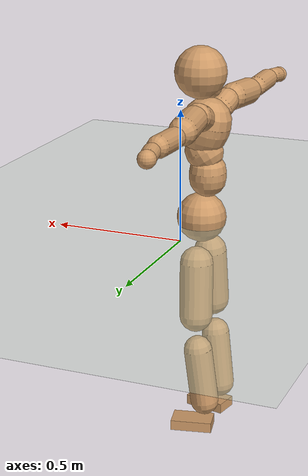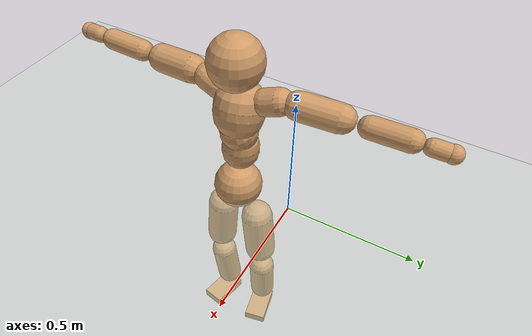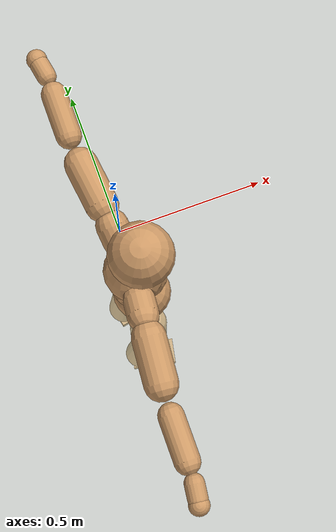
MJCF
<mujoco model="humanoid">
  <compiler coordinate="local"/>
  <default>
    <joint damping="0.0" armature="0.01" stiffness="0.0" limited="true"/>
    <geom conaffinity="1" condim="3" contype="7" margin="0.001" rgba="0.8 0.6 .4 1"/>
  </default>
  <asset>
    <texture type="skybox" builtin="gradient" rgb1=".4 .5 .6" rgb2="0 0 0" width="100" height="100"/>
    <texture builtin="flat" height="1278" mark="cross" markrgb="1 1 1" name="texgeom" random="0.01" rgb1="0.8 0.6 0.4" rgb2="0.8 0.6 0.4" type="cube" width="127"/>
    <texture builtin="checker" height="100" name="texplane" rgb1="0 0 0" rgb2="0.8 0.8 0.8" type="2d" width="100"/>
    <material name="MatPlane" reflectance="0.5" shininess="1" specular="1" texrepeat="60 60" texture="texplane"/>
    <material name="geom" texture="texgeom" texuniform="true"/>
  </asset>
  <worldbody>
    <light cutoff="100" diffuse="1 1 1" dir="-0 0 -1.3" directional="true" exponent="1" pos="0 0 1.3" specular=".1 .1 .1"/>
    <geom conaffinity="1" condim="3" name="floor" pos="0 0 0" rgba="0.8 0.9 0.8 1" size="100 100 .2" type="plane" material="MatPlane"/>
    <body name="Pelvis" pos="-0.0014 -0.224 0.0266">
      <freejoint name="Pelvis"/>
      <geom type="sphere" contype="1" conaffinity="1" density="500" size="0.0969" pos="0.0000 0.0000 0.0000" name="Pelvis"/>
      <body name="L_Hip" pos="-0.0095 0.0756 -0.0922">
        <joint name="L_Hip_x" type="hinge" pos="0 0 0" axis="1 0 0" stiffness="800" damping="80" armature="0.02" range="-180.0000 180.0000"/>
        <joint name="L_Hip_y" type="hinge" pos="0 0 0" axis="0 1 0" stiffness="800" damping="80" armature="0.02" range="-180.0000 180.0000"/>
        <joint name="L_Hip_z" type="hinge" pos="0 0 0" axis="0 0 1" stiffness="800" damping="80" armature="0.02" range="-180.0000 180.0000"/>
        <geom type="capsule" contype="1" conaffinity="1" density="500" fromto="-0.0016 0.0055 -0.0706 -0.0065 0.0220 -0.2825" size="0.065" name="L_Hip"/>
        <body name="L_Knee" pos="-0.0082 0.0275 -0.3531">
          <joint name="L_Knee_x" type="hinge" pos="0 0 0" axis="1 0 0" stiffness="800" damping="80" armature="0.02" range="-180.0000 180.0000"/>
          <joint name="L_Knee_y" type="hinge" pos="0 0 0" axis="0 1 0" stiffness="800" damping="80" armature="0.02" range="-180.0000 180.0000"/>
          <joint name="L_Knee_z" type="hinge" pos="0 0 0" axis="0 0 1" stiffness="800" damping="80" armature="0.02" range="-180.0000 180.0000"/>
          <geom type="capsule" contype="1" conaffinity="1" density="500" fromto="-0.0093 -0.0023 -0.0739 -0.0370 -0.0092 -0.2956" size="0.0558" name="L_Knee"/>
          <body name="L_Ankle" pos="-0.0463 -0.0115 -0.3695">
            <joint name="L_Ankle_x" type="hinge" pos="0 0 0" axis="1 0 0" stiffness="800" damping="80" armature="0.02" range="-180.0000 180.0000"/>
            <joint name="L_Ankle_y" type="hinge" pos="0 0 0" axis="0 1 0" stiffness="800" damping="80" armature="0.02" range="-180.0000 180.0000"/>
            <joint name="L_Ankle_z" type="hinge" pos="0 0 0" axis="0 0 1" stiffness="800" damping="80" armature="0.02" range="-180.0000 180.0000"/>
            <geom type="box" contype="1" conaffinity="1" density="500" pos="0.0566 0.0121 -0.0265" size="0.0816 0.0472 0.0203" quat="0.9945 0.0000 0.0000 0.1050" name="L_Ankle"/>
            <body name="L_Toe" pos="0.1133 0.0242 -0.0531">
              <joint name="L_Toe_x" type="hinge" pos="0 0 0" axis="1 0 0" stiffness="500" damping="50" armature="0.02" range="-180.0000 180.0000"/>
              <joint name="L_Toe_y" type="hinge" pos="0 0 0" axis="0 1 0" stiffness="500" damping="50" armature="0.02" range="-180.0000 180.0000"/>
              <joint name="L_Toe_z" type="hinge" pos="0 0 0" axis="0 0 1" stiffness="500" damping="50" armature="0.02" range="-180.0000 180.0000"/>
              <geom type="box" contype="1" conaffinity="1" density="500" pos="0.0000 0.0000 0.0263" size="0.001 0.0024 0.001" quat="0.9938 0.0000 0.0000 0.1115" name="L_Toe"/>
            </body>
          </body>
        </body>
      </body>
      <body name="R_Hip" pos="-0.0064 -0.0729 -0.0916">
        <joint name="R_Hip_x" type="hinge" pos="0 0 0" axis="1 0 0" stiffness="800" damping="80" armature="0.02" range="-180.0000 180.0000"/>
        <joint name="R_Hip_y" type="hinge" pos="0 0 0" axis="0 1 0" stiffness="800" damping="80" armature="0.02" range="-180.0000 180.0000"/>
        <joint name="R_Hip_z" type="hinge" pos="0 0 0" axis="0 0 1" stiffness="800" damping="80" armature="0.02" range="-180.0000 180.0000"/>
        <geom type="capsule" contype="1" conaffinity="1" density="500" fromto="-0.0022 -0.0067 -0.0718 -0.0089 -0.0267 -0.2873" size="0.0643" name="R_Hip"/>
        <body name="R_Knee" pos="-0.0111 -0.0334 -0.3592">
          <joint name="R_Knee_x" type="hinge" pos="0 0 0" axis="1 0 0" stiffness="800" damping="80" armature="0.02" range="-180.0000 180.0000"/>
          <joint name="R_Knee_y" type="hinge" pos="0 0 0" axis="0 1 0" stiffness="800" damping="80" armature="0.02" range="-180.0000 180.0000"/>
          <joint name="R_Knee_z" type="hinge" pos="0 0 0" axis="0 0 1" stiffness="800" damping="80" armature="0.02" range="-180.0000 180.0000"/>
          <geom type="capsule" contype="1" conaffinity="1" density="500" fromto="-0.0090 0.0027 -0.0739 -0.0359 0.0108 -0.2956" size="0.0559" name="R_Knee"/>
          <body name="R_Ankle" pos="-0.0449 0.0135 -0.3695">
            <joint name="R_Ankle_x" type="hinge" pos="0 0 0" axis="1 0 0" stiffness="800" damping="80" armature="0.02" range="-180.0000 180.0000"/>
            <joint name="R_Ankle_y" type="hinge" pos="0 0 0" axis="0 1 0" stiffness="800" damping="80" armature="0.02" range="-180.0000 180.0000"/>
            <joint name="R_Ankle_z" type="hinge" pos="0 0 0" axis="0 0 1" stiffness="800" damping="80" armature="0.02" range="-180.0000 180.0000"/>
            <geom type="box" contype="1" conaffinity="1" density="500" pos="0.0586 -0.0119 -0.0230" size="0.0824 0.0468 0.0202" quat="0.9950 0.0000 0.0000 -0.0999" name="R_Ankle"/>
            <body name="R_Toe" pos="0.1172 -0.0238 -0.046">
              <joint name="R_Toe_x" type="hinge" pos="0 0 0" axis="1 0 0" stiffness="500" damping="50" armature="0.02" range="-180.0000 180.0000"/>
              <joint name="R_Toe_y" type="hinge" pos="0 0 0" axis="0 1 0" stiffness="500" damping="50" armature="0.02" range="-180.0000 180.0000"/>
              <joint name="R_Toe_z" type="hinge" pos="0 0 0" axis="0 0 1" stiffness="500" damping="50" armature="0.02" range="-180.0000 180.0000"/>
              <geom type="box" contype="1" conaffinity="1" density="500" pos="0.0000 0.0000 0.0247" size="0.0009 0.0023 0.0011" quat="0.9959 0.0000 0.0000 -0.0902" name="R_Toe"/>
            </body>
          </body>
        </body>
      </body>
      <body name="Torso" pos="-0.0223 -0.0024 0.1064">
        <joint name="Torso_x" type="hinge" pos="0 0 0" axis="1 0 0" stiffness="1000" damping="100" armature="0.02" range="-180.0000 180.0000"/>
        <joint name="Torso_y" type="hinge" pos="0 0 0" axis="0 1 0" stiffness="1000" damping="100" armature="0.02" range="-180.0000 180.0000"/>
        <joint name="Torso_z" type="hinge" pos="0 0 0" axis="0 0 1" stiffness="1000" damping="100" armature="0.02" range="-180.0000 180.0000"/>
        <geom type="capsule" contype="1" conaffinity="1" density="500" fromto="-0.0012 0.0024 0.0802 -0.0008 0.0016 0.0535" size="0.0726" name="Torso"/>
        <body name="Spine" pos="-0.002 0.004 0.1336">
          <joint name="Spine_x" type="hinge" pos="0 0 0" axis="1 0 0" stiffness="1000" damping="100" armature="0.02" range="-180.0000 180.0000"/>
          <joint name="Spine_y" type="hinge" pos="0 0 0" axis="0 1 0" stiffness="1000" damping="100" armature="0.02" range="-180.0000 180.0000"/>
          <joint name="Spine_z" type="hinge" pos="0 0 0" axis="0 0 1" stiffness="1000" damping="100" armature="0.02" range="-180.0000 180.0000"/>
          <geom type="capsule" contype="1" conaffinity="1" density="500" fromto="0.0191 0.0010 0.0306 0.0128 0.0006 0.0204" size="0.0724" name="Spine"/>
          <body name="Chest" pos="0.0319 0.0016 0.051">
            <joint name="Chest_x" type="hinge" pos="0 0 0" axis="1 0 0" stiffness="1000" damping="100" armature="0.02" range="-180.0000 180.0000"/>
            <joint name="Chest_y" type="hinge" pos="0 0 0" axis="0 1 0" stiffness="1000" damping="100" armature="0.02" range="-180.0000 180.0000"/>
            <joint name="Chest_z" type="hinge" pos="0 0 0" axis="0 0 1" stiffness="1000" damping="100" armature="0.02" range="-180.0000 180.0000"/>
            <geom type="capsule" contype="1" conaffinity="1" density="500" fromto="-0.0261 -0.0008 0.0898 -0.0174 -0.0005 0.0598" size="0.0959" name="Chest"/>
            <body name="Neck" pos="-0.0513 -0.0023 0.2126">
              <joint name="Neck_x" type="hinge" pos="0 0 0" axis="1 0 0" stiffness="500" damping="50" armature="0.02" range="-180.0000 180.0000"/>
              <joint name="Neck_y" type="hinge" pos="0 0 0" axis="0 1 0" stiffness="500" damping="50" armature="0.02" range="-180.0000 180.0000"/>
              <joint name="Neck_z" type="hinge" pos="0 0 0" axis="0 0 1" stiffness="500" damping="50" armature="0.02" range="-180.0000 180.0000"/>
              <geom type="capsule" contype="1" conaffinity="1" density="500" fromto="0.0102 0.0006 0.0130 0.0408 0.0023 0.0519" size="0.0416" name="Neck"/>
              <body name="Head" pos="0.051 0.0029 0.0649">
                <joint name="Head_x" type="hinge" pos="0 0 0" axis="1 0 0" stiffness="500" damping="50" armature="0.02" range="-180.0000 180.0000"/>
                <joint name="Head_y" type="hinge" pos="0 0 0" axis="0 1 0" stiffness="500" damping="50" armature="0.02" range="-180.0000 180.0000"/>
                <joint name="Head_z" type="hinge" pos="0 0 0" axis="0 0 1" stiffness="500" damping="50" armature="0.02" range="-180.0000 180.0000"/>
                <geom type="sphere" contype="1" conaffinity="1" density="500" size="0.1003" pos="0.0000 0.0000 0.0000" name="Head"/>
              </body>
            </body>
            <body name="L_Thorax" pos="-0.0369 0.0751 0.119">
              <joint name="L_Thorax_x" type="hinge" pos="0 0 0" axis="1 0 0" stiffness="500" damping="50" armature="0.02" range="-180.0000 180.0000"/>
              <joint name="L_Thorax_y" type="hinge" pos="0 0 0" axis="0 1 0" stiffness="500" damping="50" armature="0.02" range="-180.0000 180.0000"/>
              <joint name="L_Thorax_z" type="hinge" pos="0 0 0" axis="0 0 1" stiffness="500" damping="50" armature="0.02" range="-180.0000 180.0000"/>
              <geom type="capsule" contype="1" conaffinity="1" density="500" fromto="-0.0017 0.0172 0.0061 -0.0068 0.0688 0.0243" size="0.0506" name="L_Thorax"/>
              <body name="L_Shoulder" pos="-0.0085 0.086 0.0304">
                <joint name="L_Shoulder_x" type="hinge" pos="0 0 0" axis="1 0 0" stiffness="500" damping="50" armature="0.02" range="-720.0000 720.0000"/>
                <joint name="L_Shoulder_y" type="hinge" pos="0 0 0" axis="0 1 0" stiffness="500" damping="50" armature="0.02" range="-720.0000 720.0000"/>
                <joint name="L_Shoulder_z" type="hinge" pos="0 0 0" axis="0 0 1" stiffness="500" damping="50" armature="0.02" range="-720.0000 720.0000"/>
                <geom type="capsule" contype="1" conaffinity="1" density="500" fromto="-0.0057 0.0490 -0.0022 -0.0229 0.1960 -0.0088" size="0.0523" name="L_Shoulder"/>
                <body name="L_Elbow" pos="-0.0286 0.245 -0.011">
                  <joint name="L_Elbow_x" type="hinge" pos="0 0 0" axis="1 0 0" stiffness="500" damping="50" armature="0.02" range="-720.0000 720.0000"/>
                  <joint name="L_Elbow_y" type="hinge" pos="0 0 0" axis="0 1 0" stiffness="500" damping="50" armature="0.02" range="-720.0000 720.0000"/>
                  <joint name="L_Elbow_z" type="hinge" pos="0 0 0" axis="0 0 1" stiffness="500" damping="50" armature="0.02" range="-720.0000 720.0000"/>
                  <geom type="capsule" contype="1" conaffinity="1" density="500" fromto="0.0002 0.0466 0.0016 0.0009 0.1863 0.0064" size="0.0404" name="L_Elbow"/>
                  <body name="L_Wrist" pos="0.0012 0.2329 0.008">
                    <joint name="L_Wrist_x" type="hinge" pos="0 0 0" axis="1 0 0" stiffness="300" damping="30" armature="0.02" range="-180.0000 180.0000"/>
                    <joint name="L_Wrist_y" type="hinge" pos="0 0 0" axis="0 1 0" stiffness="300" damping="30" armature="0.02" range="-180.0000 180.0000"/>
                    <joint name="L_Wrist_z" type="hinge" pos="0 0 0" axis="0 0 1" stiffness="300" damping="30" armature="0.02" range="-180.0000 180.0000"/>
                    <geom type="capsule" contype="1" conaffinity="1" density="500" fromto="-0.0026 0.0162 -0.0020 -0.0105 0.0646 -0.0078" size="0.0308" name="L_Wrist"/>
                    <body name="L_Hand" pos="-0.0132 0.0808 -0.0098">
                      <joint name="L_Hand_x" type="hinge" pos="0 0 0" axis="1 0 0" stiffness="300" damping="30" armature="0.02" range="-180.0000 180.0000"/>
                      <joint name="L_Hand_y" type="hinge" pos="0 0 0" axis="0 1 0" stiffness="300" damping="30" armature="0.02" range="-180.0000 180.0000"/>
                      <joint name="L_Hand_z" type="hinge" pos="0 0 0" axis="0 0 1" stiffness="300" damping="30" armature="0.02" range="-180.0000 180.0000"/>
                      <geom type="sphere" contype="1" conaffinity="1" density="500" size="0.0326" pos="0.0000 0.0000 0.0000" name="L_Hand"/>
                    </body>
                  </body>
                </body>
              </body>
            </body>
            <body name="R_Thorax" pos="-0.042 -0.0766 0.1172">
              <joint name="R_Thorax_x" type="hinge" pos="0 0 0" axis="1 0 0" stiffness="500" damping="50" armature="0.02" range="-180.0000 180.0000"/>
              <joint name="R_Thorax_y" type="hinge" pos="0 0 0" axis="0 1 0" stiffness="500" damping="50" armature="0.02" range="-180.0000 180.0000"/>
              <joint name="R_Thorax_z" type="hinge" pos="0 0 0" axis="0 0 1" stiffness="500" damping="50" armature="0.02" range="-180.0000 180.0000"/>
              <geom type="capsule" contype="1" conaffinity="1" density="500" fromto="-0.0019 -0.0179 0.0063 -0.0074 -0.0714 0.0252" size="0.0494" name="R_Thorax"/>
              <body name="R_Shoulder" pos="-0.0093 -0.0893 0.0315">
                <joint name="R_Shoulder_x" type="hinge" pos="0 0 0" axis="1 0 0" stiffness="500" damping="50" armature="0.02" range="-720.0000 720.0000"/>
                <joint name="R_Shoulder_y" type="hinge" pos="0 0 0" axis="0 1 0" stiffness="500" damping="50" armature="0.02" range="-720.0000 720.0000"/>
                <joint name="R_Shoulder_z" type="hinge" pos="0 0 0" axis="0 0 1" stiffness="500" damping="50" armature="0.02" range="-720.0000 720.0000"/>
                <geom type="capsule" contype="1" conaffinity="1" density="500" fromto="-0.0043 -0.0478 -0.0024 -0.0171 -0.1913 -0.0097" size="0.0533" name="R_Shoulder"/>
                <body name="R_Elbow" pos="-0.0214 -0.2392 -0.0121">
                  <joint name="R_Elbow_x" type="hinge" pos="0 0 0" axis="1 0 0" stiffness="500" damping="50" armature="0.02" range="-720.0000 720.0000"/>
                  <joint name="R_Elbow_y" type="hinge" pos="0 0 0" axis="0 1 0" stiffness="500" damping="50" armature="0.02" range="-720.0000 720.0000"/>
                  <joint name="R_Elbow_z" type="hinge" pos="0 0 0" axis="0 0 1" stiffness="500" damping="50" armature="0.02" range="-720.0000 720.0000"/>
                  <geom type="capsule" contype="1" conaffinity="1" density="500" fromto="-0.0004 -0.0476 0.0016 -0.0016 -0.1904 0.0064" size="0.0403" name="R_Elbow"/>
                  <body name="R_Wrist" pos="-0.002 -0.238 0.008">
                    <joint name="R_Wrist_x" type="hinge" pos="0 0 0" axis="1 0 0" stiffness="300" damping="30" armature="0.02" range="-180.0000 180.0000"/>
                    <joint name="R_Wrist_y" type="hinge" pos="0 0 0" axis="0 1 0" stiffness="300" damping="30" armature="0.02" range="-180.0000 180.0000"/>
                    <joint name="R_Wrist_z" type="hinge" pos="0 0 0" axis="0 0 1" stiffness="300" damping="30" armature="0.02" range="-180.0000 180.0000"/>
                    <geom type="capsule" contype="1" conaffinity="1" density="500" fromto="-0.0021 -0.0161 -0.0015 -0.0084 -0.0644 -0.0058" size="0.0312" name="R_Wrist"/>
                    <body name="R_Hand" pos="-0.0105 -0.0805 -0.0073">
                      <joint name="R_Hand_x" type="hinge" pos="0 0 0" axis="1 0 0" stiffness="300" damping="30" armature="0.02" range="-180.0000 180.0000"/>
                      <joint name="R_Hand_y" type="hinge" pos="0 0 0" axis="0 1 0" stiffness="300" damping="30" armature="0.02" range="-180.0000 180.0000"/>
                      <joint name="R_Hand_z" type="hinge" pos="0 0 0" axis="0 0 1" stiffness="300" damping="30" armature="0.02" range="-180.0000 180.0000"/>
                      <geom type="sphere" contype="1" conaffinity="1" density="500" size="0.0325" pos="0.0000 0.0000 0.0000" name="R_Hand"/>
                    </body>
                  </body>
                </body>
              </body>
            </body>
          </body>
        </body>
      </body>
    </body>
  </worldbody>
  <actuator>
    <motor name="L_Hip_x" joint="L_Hip_x" gear="500"/>
    <motor name="L_Hip_y" joint="L_Hip_y" gear="500"/>
    <motor name="L_Hip_z" joint="L_Hip_z" gear="500"/>
    <motor name="L_Knee_x" joint="L_Knee_x" gear="500"/>
    <motor name="L_Knee_y" joint="L_Knee_y" gear="500"/>
    <motor name="L_Knee_z" joint="L_Knee_z" gear="500"/>
    <motor name="L_Ankle_x" joint="L_Ankle_x" gear="500"/>
    <motor name="L_Ankle_y" joint="L_Ankle_y" gear="500"/>
    <motor name="L_Ankle_z" joint="L_Ankle_z" gear="500"/>
    <motor name="L_Toe_x" joint="L_Toe_x" gear="500"/>
    <motor name="L_Toe_y" joint="L_Toe_y" gear="500"/>
    <motor name="L_Toe_z" joint="L_Toe_z" gear="500"/>
    <motor name="R_Hip_x" joint="R_Hip_x" gear="500"/>
    <motor name="R_Hip_y" joint="R_Hip_y" gear="500"/>
    <motor name="R_Hip_z" joint="R_Hip_z" gear="500"/>
    <motor name="R_Knee_x" joint="R_Knee_x" gear="500"/>
    <motor name="R_Knee_y" joint="R_Knee_y" gear="500"/>
    <motor name="R_Knee_z" joint="R_Knee_z" gear="500"/>
    <motor name="R_Ankle_x" joint="R_Ankle_x" gear="500"/>
    <motor name="R_Ankle_y" joint="R_Ankle_y" gear="500"/>
    <motor name="R_Ankle_z" joint="R_Ankle_z" gear="500"/>
    <motor name="R_Toe_x" joint="R_Toe_x" gear="500"/>
    <motor name="R_Toe_y" joint="R_Toe_y" gear="500"/>
    <motor name="R_Toe_z" joint="R_Toe_z" gear="500"/>
    <motor name="Torso_x" joint="Torso_x" gear="500"/>
    <motor name="Torso_y" joint="Torso_y" gear="500"/>
    <motor name="Torso_z" joint="Torso_z" gear="500"/>
    <motor name="Spine_x" joint="Spine_x" gear="500"/>
    <motor name="Spine_y" joint="Spine_y" gear="500"/>
    <motor name="Spine_z" joint="Spine_z" gear="500"/>
    <motor name="Chest_x" joint="Chest_x" gear="500"/>
    <motor name="Chest_y" joint="Chest_y" gear="500"/>
    <motor name="Chest_z" joint="Chest_z" gear="500"/>
    <motor name="Neck_x" joint="Neck_x" gear="500"/>
    <motor name="Neck_y" joint="Neck_y" gear="500"/>
    <motor name="Neck_z" joint="Neck_z" gear="500"/>
    <motor name="Head_x" joint="Head_x" gear="500"/>
    <motor name="Head_y" joint="Head_y" gear="500"/>
    <motor name="Head_z" joint="Head_z" gear="500"/>
    <motor name="L_Thorax_x" joint="L_Thorax_x" gear="500"/>
    <motor name="L_Thorax_y" joint="L_Thorax_y" gear="500"/>
    <motor name="L_Thorax_z" joint="L_Thorax_z" gear="500"/>
    <motor name="L_Shoulder_x" joint="L_Shoulder_x" gear="500"/>
    <motor name="L_Shoulder_y" joint="L_Shoulder_y" gear="500"/>
    <motor name="L_Shoulder_z" joint="L_Shoulder_z" gear="500"/>
    <motor name="L_Elbow_x" joint="L_Elbow_x" gear="500"/>
    <motor name="L_Elbow_y" joint="L_Elbow_y" gear="500"/>
    <motor name="L_Elbow_z" joint="L_Elbow_z" gear="500"/>
    <motor name="L_Wrist_x" joint="L_Wrist_x" gear="500"/>
    <motor name="L_Wrist_y" joint="L_Wrist_y" gear="500"/>
    <motor name="L_Wrist_z" joint="L_Wrist_z" gear="500"/>
    <motor name="L_Hand_x" joint="L_Hand_x" gear="500"/>
    <motor name="L_Hand_y" joint="L_Hand_y" gear="500"/>
    <motor name="L_Hand_z" joint="L_Hand_z" gear="500"/>
    <motor name="R_Thorax_x" joint="R_Thorax_x" gear="500"/>
    <motor name="R_Thorax_y" joint="R_Thorax_y" gear="500"/>
    <motor name="R_Thorax_z" joint="R_Thorax_z" gear="500"/>
    <motor name="R_Shoulder_x" joint="R_Shoulder_x" gear="500"/>
    <motor name="R_Shoulder_y" joint="R_Shoulder_y" gear="500"/>
    <motor name="R_Shoulder_z" joint="R_Shoulder_z" gear="500"/>
    <motor name="R_Elbow_x" joint="R_Elbow_x" gear="500"/>
    <motor name="R_Elbow_y" joint="R_Elbow_y" gear="500"/>
    <motor name="R_Elbow_z" joint="R_Elbow_z" gear="500"/>
    <motor name="R_Wrist_x" joint="R_Wrist_x" gear="500"/>
    <motor name="R_Wrist_y" joint="R_Wrist_y" gear="500"/>
    <motor name="R_Wrist_z" joint="R_Wrist_z" gear="500"/>
    <motor name="R_Hand_x" joint="R_Hand_x" gear="500"/>
    <motor name="R_Hand_y" joint="R_Hand_y" gear="500"/>
    <motor name="R_Hand_z" joint="R_Hand_z" gear="500"/>
  </actuator>
  <contact>
    <exclude body1="Torso" body2="Chest"/>
    <exclude body1="Head" body2="Chest"/>
    <exclude body1="R_Knee" body2="R_Toe"/>
    <exclude body1="R_Knee" body2="L_Ankle"/>
    <exclude body1="R_Knee" body2="L_Toe"/>
    <exclude body1="L_Knee" body2="L_Toe"/>
    <exclude body1="L_Knee" body2="R_Ankle"/>
    <exclude body1="L_Knee" body2="R_Toe"/>
    <exclude body1="L_Shoulder" body2="Chest"/>
    <exclude body1="R_Shoulder" body2="Chest"/>
  </contact>
  <sensor/>
  <size njmax="700" nconmax="700"/>
</mujoco>
